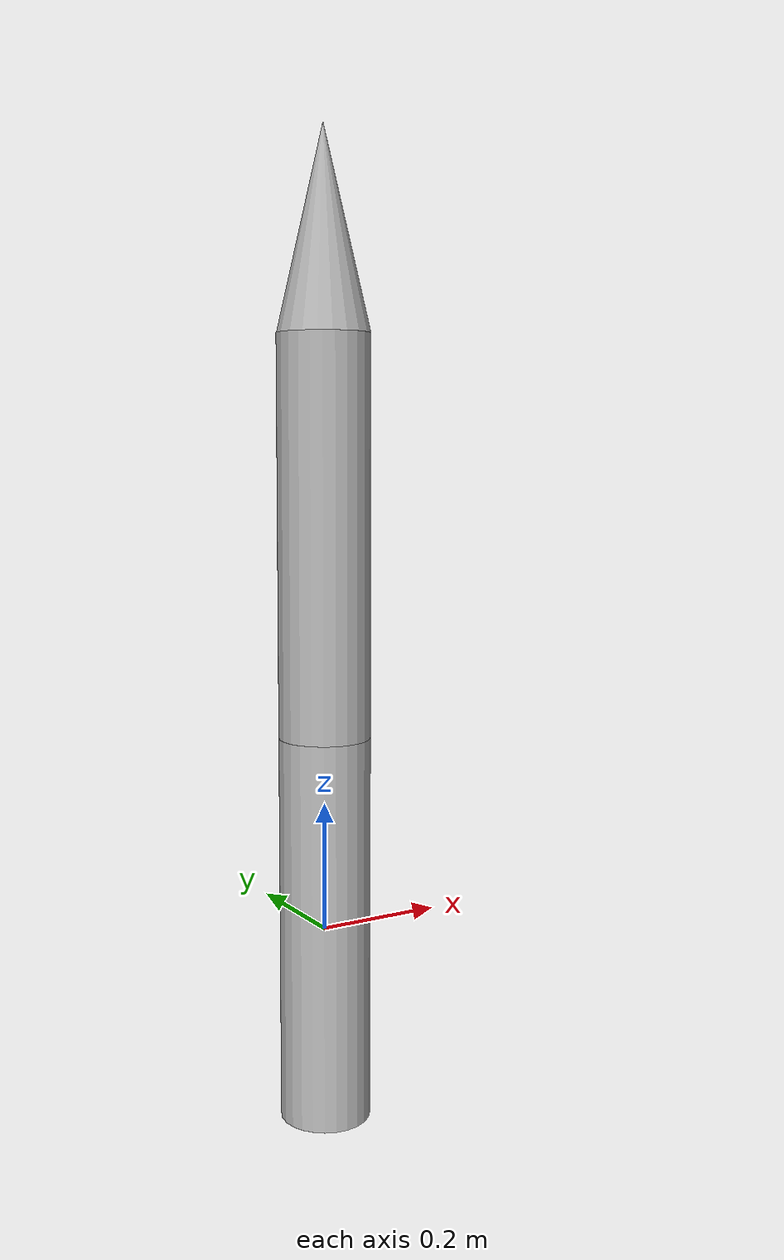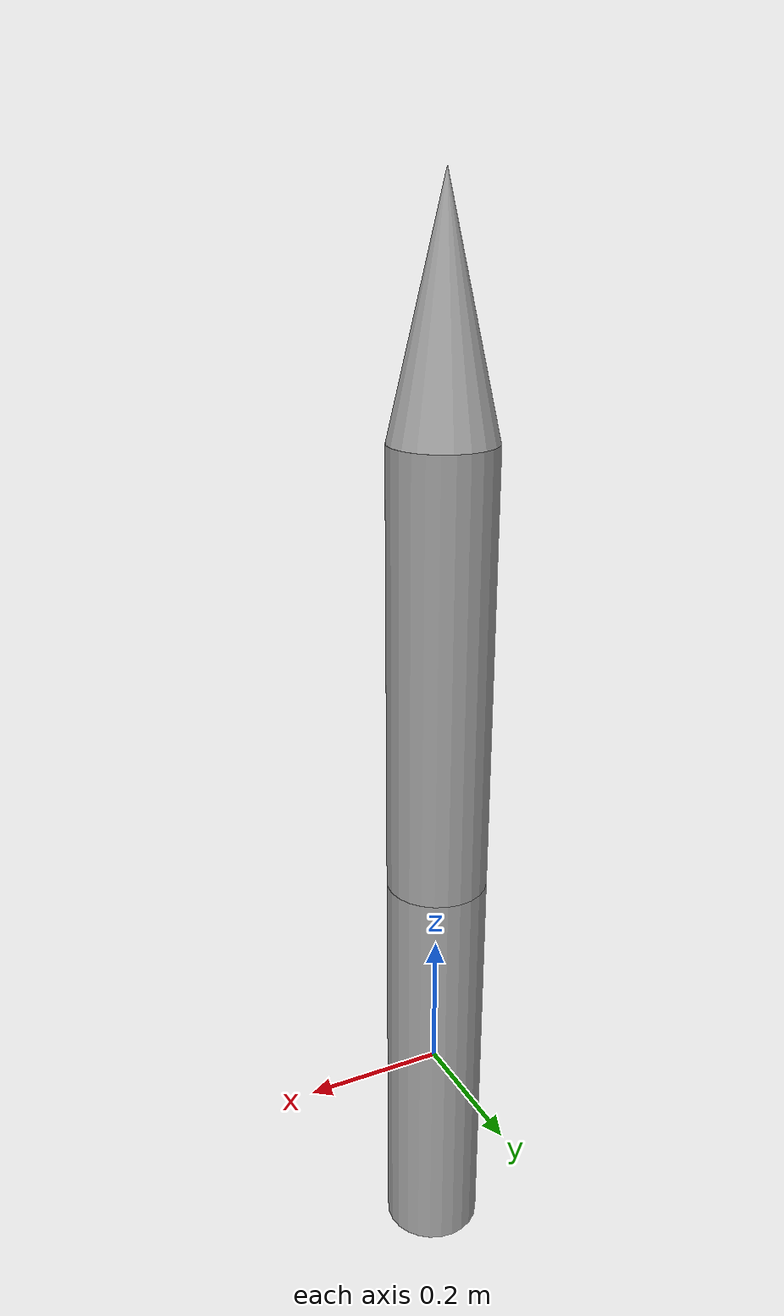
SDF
<?xml version="1.0" encoding="UTF-8"?>
<sdf version="1.8">
  <model name="rocket_system">
    <include>
      <uri>model://rocket_base</uri>
      <name>rocket_base</name>
    </include>

    <include>
      <uri>model://rocket_cone</uri>
      <name>rocket_cone</name>
      <pose>0 0 1.0644 0 0 0</pose>
    </include>

    <include>
      <uri>model://container</uri>
      <name>container</name>
      <pose>0 0 0.75 0 0 0</pose>
    </include>

    <include>
      <uri>model://pocket_qube</uri>
      <name>pocket_qube</name>
      <pose>0 0 0.75 0 0 0</pose>
    </include>
  </model>
</sdf>

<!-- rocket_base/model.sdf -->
<sdf version='1.8'>
  <model name='rocket_base'>
    <pose>0 0 0 0 0 0</pose>
    <link name='rocket_base_link'>
      <pose>0 0 0 0 0 0</pose>
      <inertial>
       <pose>0 0 0 0 0 0</pose>
       <mass>1.899</mass>
       <inertia>
         <ixx>0.14212</ixx>
         <ixy>0</ixy>
         <ixz>0</ixz>
         <iyy>0.14212</iyy>
         <iyz>0</iyz>
         <izz>0.00047</izz>
       </inertia>
      </inertial>
      <velocity_decay>
        <linear>0.01</linear>
        <angular>0.005</angular>
      </velocity_decay>
      <collision name='rocket_base_collision'>
        <pose>0 0 0 0 0 0</pose>
        <geometry>
          <cylinder>
            <radius>0.07036</radius>
            <length>0.6096</length>
          </cylinder>
        </geometry>
        <surface>
          <contact>
            <ode>
              <kp>1e6</kp>
              <kd>100.0</kd>
              <max_vel>0.01</max_vel>
              <min_depth>0.001</min_depth>
            </ode>
          </contact>
        </surface>
      </collision>
      <visual name='rocket_base_visual'>
        <pose>0 0 0 0 0 0</pose>
        <geometry>
          <cylinder>
            <radius>0.07036</radius>
            <length>0.6096</length>
          </cylinder>
       </geometry>
      </visual>
    </link>

    <link name='rocket_payload_link'>
      <pose>0 0 0.6096 0 0 0</pose>
      <inertial>
        <pose>0 0 0 0 0 0</pose>
        <mass>0.425</mass>
        <inertia>
          <ixx>0.01463</ixx>
          <ixy>0</ixy>
          <ixz>0</ixz>
          <iyy>0.01463</iyy>
          <iyz>0</iyz>
          <izz>0.001992</izz>
        </inertia>
      </inertial>
      <collision name='rocket_payload_collsion_wall_0'>
        <pose>0 0.068429 0 0 0 0</pose>
        <geometry>
          <box>
            <size>0.140716 0.003858 0.6096</size>
          </box>
        </geometry>
        <surface>
          <contact>
            <ode>
              <kp>1e6</kp>
              <kd>100.0</kd>
              <max_vel>0.01</max_vel>
              <min_depth>0.001</min_depth>
            </ode>
          </contact>
        </surface>
      </collision>
      <collision name='rocket_payload_collsion_wall_1'>
        <pose>-0.068429 0 0 0 0 1.57</pose>
        <geometry>
          <box>
            <size>0.140716 0.003858 0.6096</size>
          </box>
        </geometry>
        <surface>
          <contact>
            <ode>
              <kp>1e6</kp>
              <kd>100.0</kd>
              <max_vel>0.01</max_vel>
              <min_depth>0.001</min_depth>
            </ode>
          </contact>
        </surface>
      </collision>
      <collision name='rocket_payload_collsion_wall_2'>
        <pose>0 -0.068429 0 0 0 0</pose>
        <geometry>
          <box>
            <size>0.140716 0.003858 0.6096</size>
          </box>
        </geometry>
        <surface>
          <contact>
            <ode>
              <kp>1e6</kp>
              <kd>100.0</kd>
              <max_vel>0.01</max_vel>
              <min_depth>0.001</min_depth>
            </ode>
          </contact>
        </surface>
      </collision>
      <collision name='rocket_payload_collsion_wall_3'>
        <pose>0.068429 0 0 0 0 1.57</pose>
        <geometry>
          <box>
            <size>0.140716 0.003858 0.6096</size>
          </box>
        </geometry>
        <surface>
          <contact>
            <ode>
              <kp>1e6</kp>
              <kd>100.0</kd>
              <max_vel>0.01</max_vel>
              <min_depth>0.001</min_depth>
            </ode>
          </contact>
        </surface>
      </collision>
      <visual name='rocket_payload_visual'>
        <pose>0 0 0 0 0 0</pose>
        <geometry>
          <!-- use a hollow mesh in the future -->
          <cylinder>
            <radius>0.07036</radius>
            <length>0.6096</length>
          </cylinder>
        </geometry>
      </visual>
    </link>

    <joint name='rocket_base_payload_joint' type='fixed'>
      <parent>rocket_base_link</parent>
      <child>rocket_payload_link</child>
    </joint>

    <plugin
      filename="gz-sim-detachable-joint-system"
      name="gz::sim::systems::DetachableJoint">
      <parent_link>rocket_payload_link</parent_link>
      <child_model>rocket_cone</child_model>
      <child_link>rocket_cone_link</child_link>
      <detach_topic>/rocket/cone/detach</detach_topic>
    </plugin>

    <plugin
      filename="gz-sim-detachable-joint-system"
      name="gz::sim::systems::DetachableJoint">
      <parent_link>rocket_payload_link</parent_link>
      <child_model>container</child_model>
      <child_link>container_link</child_link>
      <detach_topic>/rocket/container/detach</detach_topic>
    </plugin>

    <plugin
      filename="gz-sim-pose-publisher-system"
      name="gz::sim::systems::PosePublisher">
      <publish_model_pose>true</publish_model_pose>
      <publish_link_pose>false</publish_link_pose>
      <use_pose_vector_msg>false</use_pose_vector_msg>
      <update_frequency>50</update_frequency>
    </plugin>

    <plugin filename="libJ425R.so" name="cansat::J425R"/>
    <plugin filename="libRocketRecovery.so" name="cansat::RocketRecovery"/>
  </model>
</sdf>

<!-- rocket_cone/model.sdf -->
<sdf version='1.5'>
  <model name="rocket_cone">
    <link name='rocket_cone_link'>
      <pose>0 0 0 0 0 0</pose>
      <inertial>
        <pose>0 0 0 0 0 0</pose>
        <mass>0.1</mass>
        <inertia>
          <ixx>0.001</ixx>
          <ixy>0</ixy>
          <ixz>0</ixz>
          <iyy>0.001</iyy>
          <iyz>0</iyz>
          <izz>0.001</izz>
        </inertia>
      </inertial>
      <velocity_decay>
        <linear>0.01</linear>
        <angular>0.005</angular>
      </velocity_decay>
      <collision name="rocket_cone_collision">
        <geometry>
          <cone>
            <radius>0.07036</radius>
            <length>0.3</length>
          </cone>
        </geometry>
      </collision>
      <visual name="rocket_cone_visual">
        <geometry>
          <cone>
            <radius>0.07036</radius>
            <length>0.3</length>
          </cone>
        </geometry>
      </visual>
    </link>
  </model>
</sdf>

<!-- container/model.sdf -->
<sdf version='1.8'>
  <model name="container">
    <link name="container_link">
      <pose>0 0 0 0 0 0</pose>
      <inertial>
        <pose>0 0 0 0 0 0</pose>
        <mass>0.6</mass>
        <inertia>
          <ixx>0.002449</ixx>
          <ixy>0.0</ixy>
          <ixz>0.0</ixz>
          <iyy>0.002449</iyy>
          <iyz>0.0</iyz>
          <izz>0.001287</izz>
        </inertia>
      </inertial>
      <velocity_decay>
        <linear>0.01</linear>
        <angular>0.005</angular>
      </velocity_decay>
      <collision name="container_collision_wall_0">
        <pose>0.0553647 0 0 0 0 1.57</pose>
        <geometry>
          <box>
            <size>0.07 0.01 0.19</size>
          </box>
        </geometry>
        <surface>
          <contact>
            <ode>
              <kp>1e6</kp>
              <kd>100.0</kd>
              <max_vel>0.01</max_vel>
              <min_depth>0.001</min_depth>
            </ode>
          </contact>
        </surface>
      </collision>
      <collision name="container_collision_wall_1">
        <pose>0 0.0553647 0 0 0 0</pose>
        <geometry>
          <box>
            <size>0.07 0.01 0.19</size>
          </box>
        </geometry>
        <surface>
          <contact>
            <ode>
              <kp>1e6</kp>
              <kd>100.0</kd>
              <max_vel>0.01</max_vel>
              <min_depth>0.001</min_depth>
            </ode>
          </contact>
        </surface>
      </collision>
      <collision name="container_collision_wall_2">
        <pose>-0.0553647 0 0 0 0 1.57</pose>
        <geometry>
          <box>
            <size>0.07 0.01 0.19</size>
          </box>
        </geometry>
        <surface>
          <contact>
            <ode>
              <kp>1e6</kp>
              <kd>100.0</kd>
              <max_vel>0.01</max_vel>
              <min_depth>0.001</min_depth>
            </ode>
          </contact>
        </surface>
      </collision>
      <collision name="container_collision_wall_3">
        <pose>0 -0.0553647 0 0 0 0</pose>
        <geometry>
          <box>
            <size>0.07 0.01 0.19</size>
          </box>
        </geometry>
        <surface>
          <contact>
            <ode>
              <kp>1e6</kp>
              <kd>100.0</kd>
              <max_vel>0.01</max_vel>
              <min_depth>0.001</min_depth>
            </ode>
          </contact>
        </surface>
      </collision>
      <visual name="container_visual">
        <geometry>
          <cylinder>
            <radius>0.0655</radius>
            <length>0.19</length>
          </cylinder>
        </geometry>
        <material>
          <ambient>0.175 0.175 0.175 1.0</ambient>
          <diffuse>0.175 0.175 0.175 1.0</diffuse>
        </material>
      </visual>

      <sensor name="barometer" type="air_pressure">
        <always_on>true</always_on>
        <update_rate>20</update_rate>
        <topic>/container/air_pressure</topic>
        <air_pressure>
          <pressure>
            <noise type="gaussian">
              <mean>0.0</mean>
              <stddev>1.0</stddev> <!-- 1 Pa resolution noise -->
            </noise>
          </pressure>
        </air_pressure>
      </sensor>
      <sensor name="altimeter" type="altimeter">
        <always_on>true</always_on>
        <update_rate>20</update_rate>
        <topic>/container/altimeter</topic>
        <altimeter>
          <vertical_position>
            <noise type="gaussian">
              <mean>0.0</mean>
              <stddev>0.1</stddev> <!-- 0.1m resolution noise -->
            </noise>
          </vertical_position>
        </altimeter>
      </sensor>
    </link>

    <plugin
      filename="gz-sim-pose-publisher-system"
      name="gz::sim::systems::PosePublisher">
      <publish_model_pose>true</publish_model_pose>
      <publish_link_pose>false</publish_link_pose>
      <use_pose_vector_msg>false</use_pose_vector_msg>
      <update_frequency>50</update_frequency>
    </plugin>

    <plugin
      filename="gz-sim-detachable-joint-system"
      name="gz::sim::systems::DetachableJoint">
      <parent_link>container_link</parent_link>
      <child_model>pocket_qube</child_model>
      <child_link>pocket_qube_link</child_link>
      <detach_topic>/rocket/pocket_qube/detach</detach_topic>
    </plugin>

    <plugin filename="libPayloadEjection.so" name="cansat::PayloadEjection">
      <payload_link_name>container_link</payload_link_name>
      <detach_topic>/rocket/container/detach</detach_topic>
      <trigger_mode>apogee</trigger_mode>
      <min_altitude>20.0</min_altitude>
      <apogee_drop_offset>1.0</apogee_drop_offset>
      <force>45.75</force>
      <duration>0.05</duration>
    </plugin>

    <plugin filename="libParachute.so" name="cansat::Parachute">
      <link_name>container_link</link_name>
      <trigger_mode>apogee</trigger_mode>
      <apogee_drop_offset>1.0</apogee_drop_offset>
      <cd>0.082</cd>
      <area>0.196</area> <!-- 50cm canopy -->
      <tether_offset>0.15</tether_offset> <!-- above CoM -->
      <angular_damping>0.95</angular_damping>
    </plugin>
  </model>
</sdf>

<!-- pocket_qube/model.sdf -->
<sdf version='1.8'>
  <model name="pocket_qube">
    <link name="pocket_qube_link">
      <pose>0 0 0 0 0 0</pose>
      <inertial>
        <pose>0 0 0 0 0 0</pose>
        <mass>0.315</mass>
        <inertia>
          <ixx>0.0002573</ixx>
          <ixy>0.0</ixy>
          <ixz>0.0</ixz>
          <iyy>0.0002573</iyy>
          <iyz>0.0</iyz>
          <izz>0.0002573</izz>
        </inertia>
      </inertial>
      <velocity_decay>
        <linear>0.01</linear>
        <angular>0.005</angular>
      </velocity_decay>
      <collision name="pocket_qube_collision">
        <geometry>
          <box>
            <size>0.07 0.07 0.07</size>
          </box>
        </geometry>
        <surface>
          <contact>
            <ode>
              <kp>1e6</kp>
              <kd>100.0</kd>
              <max_vel>0.01</max_vel>
              <min_depth>0.001</min_depth>
            </ode>
          </contact>
        </surface>
      </collision>
      <visual name="pocket_qube_visual">
        <!-- use mesh -->
        <geometry>
          <box>
            <size>0.07 0.07 0.07</size>
          </box>
        </geometry>
        <material>
          <ambient>0.175 0.175 0.175 1.0</ambient>
          <diffuse>0.175 0.175 0.175 1.0</diffuse>
        </material>
      </visual>

      <sensor name="barometer" type="air_pressure">
        <always_on>true</always_on>
        <update_rate>20</update_rate>
        <topic>/pocket_qube/air_pressure</topic>
        <air_pressure>
          <pressure>
            <noise type="gaussian">
              <mean>0.0</mean>
              <stddev>1.0</stddev> <!-- 1 Pa resolution noise -->
            </noise>
          </pressure>
        </air_pressure>
      </sensor>
      <sensor name="altimeter" type="altimeter">
        <always_on>true</always_on>
        <update_rate>20</update_rate>
        <topic>/pocket_qube/altimeter</topic>
        <altimeter>
          <vertical_position>
            <noise type="gaussian">
              <mean>0.0</mean>
              <stddev>0.1</stddev> <!-- 0.1m resolution noise -->
            </noise>
          </vertical_position>
        </altimeter>
      </sensor>
    </link>

    <plugin
      filename="gz-sim-pose-publisher-system"
      name="gz::sim::systems::PosePublisher">
      <publish_model_pose>true</publish_model_pose>
      <publish_link_pose>false</publish_link_pose>
      <use_pose_vector_msg>false</use_pose_vector_msg>
      <update_frequency>50</update_frequency>
    </plugin>

    <plugin filename="libParachute.so" name="cansat::Parachute">
      <link_name>pocket_qube_link</link_name>
      <trigger_mode>manual</trigger_mode>
      <apogee_drop_offset>1.0</apogee_drop_offset>
      <cd>1.61</cd>
      <area>0.196</area> <!-- 50cm canopy -->
      <tether_offset>0.15</tether_offset> <!-- above CoM -->
      <angular_damping>0.0005</angular_damping>
    </plugin>

    <plugin filename="libPayloadEjection.so" name="cansat::PayloadEjection">
      <payload_link_name>pocket_qube_link</payload_link_name>
      <detach_topic>/rocket/pocket_qube/detach</detach_topic>
      <trigger_mode>apogee</trigger_mode>
      <min_altitude>20.0</min_altitude>
      <apogee_drop_offset>20.0</apogee_drop_offset>
      <force>3.0</force>
      <duration>0.05</duration>
    </plugin>
  </model>
</sdf>
